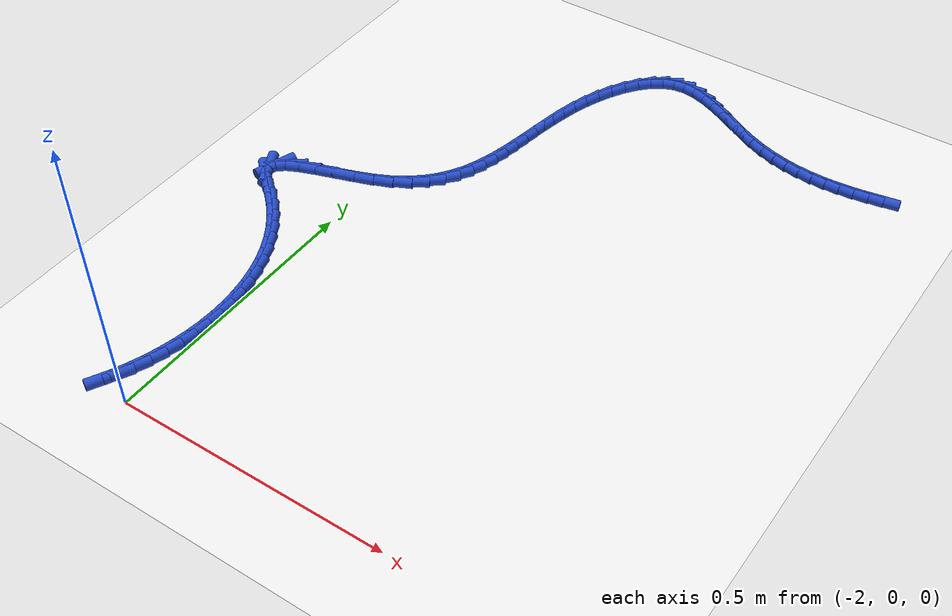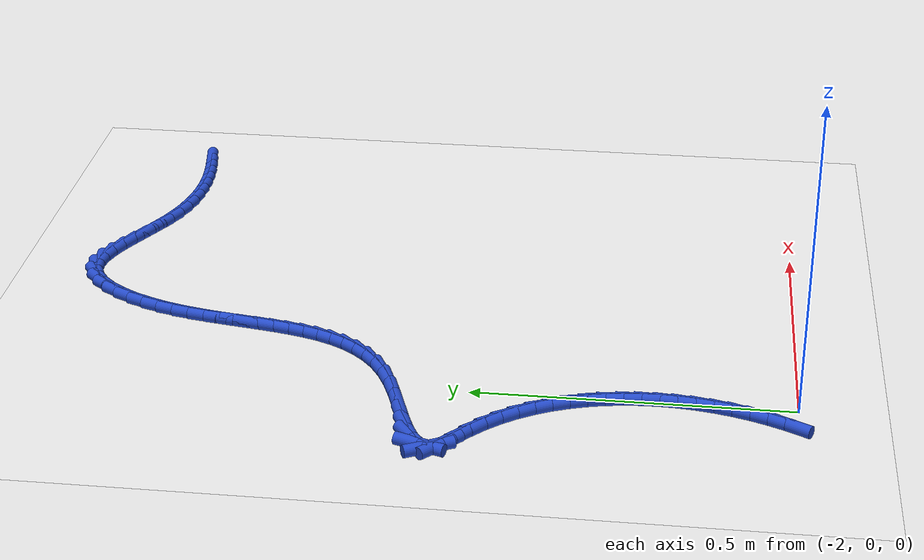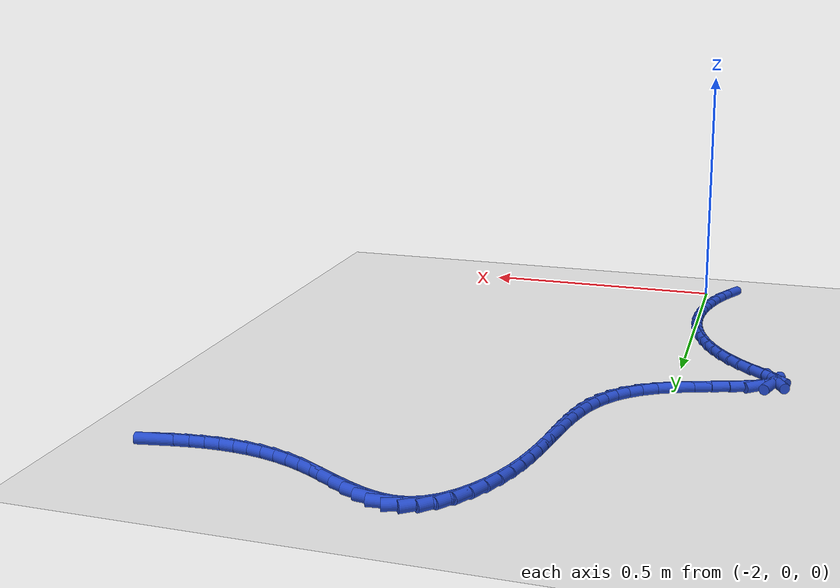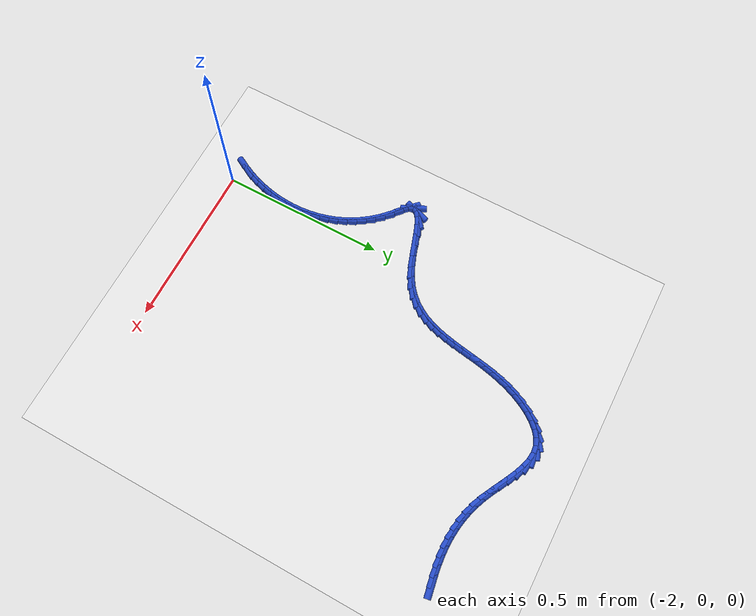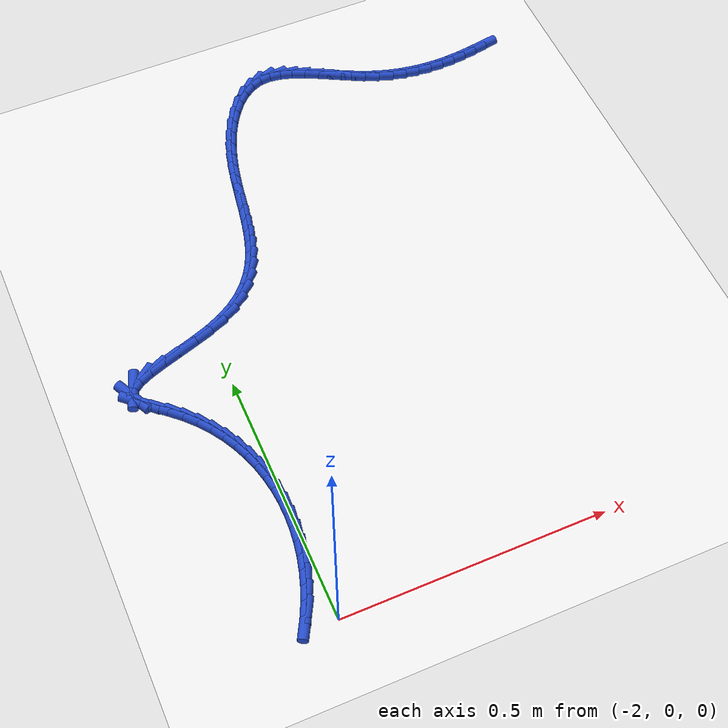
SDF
<sdf version="1.6">
 <world name="default">
  <model name="ground_plane">
   <static>1</static>
   <link name="link">
    <collision name="collision">
     <geometry><plane><normal>0 0 1</normal><size>100 100</size></plane></geometry>
     <surface><friction><ode><mu>100</mu><mu2>50</mu2></ode></friction></surface>
    </collision>
    <visual name="visual">
     <cast_shadows>0</cast_shadows>
     <geometry><plane><normal>0 0 1</normal><size>100 100</size></plane></geometry>
     <material>
      <script><uri>file://media/materials/scripts/gazebo.material</uri><name>Gazebo/WhiteGlow</name></script>
     </material>
    </visual>
   </link>
  </model>
  <model name="line">
   <link name="link_70">
    <pose>-1.2274748744859691 1.073657928588788 0.01 0 1.57 0.16033206831747765</pose>
    <collision name="collision">
     <geometry><cylinder><radius>0.01</radius><length>0.08</length></cylinder></geometry>
    </collision>
    <visual name="visual">
     <material>
      <script><name>Gazebo/Blue</name><uri>file://media/materials/scripts/gazebo.material</uri></script>
     </material>
     <geometry><cylinder><radius>0.01</radius><length>0.08</length></cylinder></geometry>
    </visual>
   </link>
   <link name="link_71">
    <pose>-1.2545601765572443 1.0692776882429227 0.01 0 1.57 0.12227672520900765</pose>
    <collision name="collision">
     <geometry><cylinder><radius>0.01</radius><length>0.08</length></cylinder></geometry>
    </collision>
    <visual name="visual">
     <material>
      <script><name>Gazebo/Blue</name><uri>file://media/materials/scripts/gazebo.material</uri></script>
     </material>
     <geometry><cylinder><radius>0.01</radius><length>0.08</length></cylinder></geometry>
    </visual>
   </link>
   <link name="link_72">
    <pose>-1.2814162379447962 1.0659773521533977 0.01 0 1.57 0.07366379797271562</pose>
    <collision name="collision">
     <geometry><cylinder><radius>0.01</radius><length>0.08</length></cylinder></geometry>
    </collision>
    <visual name="visual">
     <material>
      <script><name>Gazebo/Blue</name><uri>file://media/materials/scripts/gazebo.material</uri></script>
     </material>
     <geometry><cylinder><radius>0.01</radius><length>0.08</length></cylinder></geometry>
    </visual>
   </link>
   <link name="link_73">
    <pose>-1.3079929842341942 1.0640160592426624 0.01 0 1.57 0.01849449668090897</pose>
    <collision name="collision">
     <geometry><cylinder><radius>0.01</radius><length>0.08</length></cylinder></geometry>
    </collision>
    <visual name="visual">
     <material>
      <script><name>Gazebo/Blue</name><uri>file://media/materials/scripts/gazebo.material</uri></script>
     </material>
     <geometry><cylinder><radius>0.01</radius><length>0.08</length></cylinder></geometry>
    </visual>
   </link>
   <link name="link_74">
    <pose>-1.3343293009269745 1.0635289267790975 0.01 0 1.57 -0.04195459647967384</pose>
    <collision name="collision">
     <geometry><cylinder><radius>0.01</radius><length>0.08</length></cylinder></geometry>
    </collision>
    <visual name="visual">
     <material>
      <script><name>Gazebo/Blue</name><uri>file://media/materials/scripts/gazebo.material</uri></script>
     </material>
     <geometry><cylinder><radius>0.01</radius><length>0.08</length></cylinder></geometry>
    </visual>
   </link>
   <link name="link_75">
    <pose>-1.360481500913151 1.064626775992571 0.01 0 1.57 -0.10693792218226808</pose>
    <collision name="collision">
     <geometry><cylinder><radius>0.01</radius><length>0.08</length></cylinder></geometry>
    </collision>
    <visual name="visual">
     <material>
      <script><name>Gazebo/Blue</name><uri>file://media/materials/scripts/gazebo.material</uri></script>
     </material>
     <geometry><cylinder><radius>0.01</radius><length>0.08</length></cylinder></geometry>
    </visual>
   </link>
   <link name="link_76">
    <pose>-1.3865058970827357 1.0674204281129498 0.01 0 1.57 -0.17543259551412074</pose>
    <collision name="collision">
     <geometry><cylinder><radius>0.01</radius><length>0.08</length></cylinder></geometry>
    </collision>
    <visual name="visual">
     <material>
      <script><name>Gazebo/Blue</name><uri>file://media/materials/scripts/gazebo.material</uri></script>
     </material>
     <geometry><cylinder><radius>0.01</radius><length>0.08</length></cylinder></geometry>
    </visual>
   </link>
   <link name="link_77">
    <pose>-1.4124588023257405 1.0720207043701007 0.01 0 1.57 -0.24618625247893214</pose>
    <collision name="collision">
     <geometry><cylinder><radius>0.01</radius><length>0.08</length></cylinder></geometry>
    </collision>
    <visual name="visual">
     <material>
      <script><name>Gazebo/Blue</name><uri>file://media/materials/scripts/gazebo.material</uri></script>
     </material>
     <geometry><cylinder><radius>0.01</radius><length>0.08</length></cylinder></geometry>
    </visual>
   </link>
   <link name="link_78">
    <pose>-1.4383965295321783 1.0785384259938915 0.01 0 1.57 -0.3178087703347083</pose>
    <collision name="collision">
     <geometry><cylinder><radius>0.01</radius><length>0.08</length></cylinder></geometry>
    </collision>
    <visual name="visual">
     <material>
      <script><name>Gazebo/Blue</name><uri>file://media/materials/scripts/gazebo.material</uri></script>
     </material>
     <geometry><cylinder><radius>0.01</radius><length>0.08</length></cylinder></geometry>
    </visual>
   </link>
   <link name="link_79">
    <pose>-1.4643753915920605 1.087084414214189 0.01 0 1.57 -0.38888700737513526</pose>
    <collision name="collision">
     <geometry><cylinder><radius>0.01</radius><length>0.08</length></cylinder></geometry>
    </collision>
    <visual name="visual">
     <material>
      <script><name>Gazebo/Blue</name><uri>file://media/materials/scripts/gazebo.material</uri></script>
     </material>
     <geometry><cylinder><radius>0.01</radius><length>0.08</length></cylinder></geometry>
    </visual>
   </link>
   <link name="link_80">
    <pose>-1.490451662887468 1.0977692826484264 0.01 0 1.57 -0.45076342057396274</pose>
    <collision name="collision">
     <geometry><cylinder><radius>0.01</radius><length>0.08</length></cylinder></geometry>
    </collision>
    <visual name="visual">
     <material>
      <script><name>Gazebo/Blue</name><uri>file://media/materials/scripts/gazebo.material</uri></script>
     </material>
     <geometry><cylinder><radius>0.01</radius><length>0.08</length></cylinder></geometry>
    </visual>
   </link>
   <link name="link_81">
    <pose>-1.5166328868240058 1.1104409157558592 0.01 0 1.57 -0.4834780568722597</pose>
    <collision name="collision">
     <geometry><cylinder><radius>0.01</radius><length>0.08</length></cylinder></geometry>
    </collision>
    <visual name="visual">
     <material>
      <script><name>Gazebo/Blue</name><uri>file://media/materials/scripts/gazebo.material</uri></script>
     </material>
     <geometry><cylinder><radius>0.01</radius><length>0.08</length></cylinder></geometry>
    </visual>
   </link>
   <link name="link_82">
    <pose>-1.5427825495077094 1.1241705245985811 0.01 0 1.57 -0.48614760413924757</pose>
    <collision name="collision">
     <geometry><cylinder><radius>0.01</radius><length>0.08</length></cylinder></geometry>
    </collision>
    <visual name="visual">
     <material>
      <script><name>Gazebo/Blue</name><uri>file://media/materials/scripts/gazebo.material</uri></script>
     </material>
     <geometry><cylinder><radius>0.01</radius><length>0.08</length></cylinder></geometry>
    </visual>
   </link>
   <link name="link_83">
    <pose>-1.5687376451167458 1.137886491130577 0.01 0 1.57 -0.45838159572695697</pose>
    <collision name="collision">
     <geometry><cylinder><radius>0.01</radius><length>0.08</length></cylinder></geometry>
    </collision>
    <visual name="visual">
     <material>
      <script><name>Gazebo/Blue</name><uri>file://media/materials/scripts/gazebo.material</uri></script>
     </material>
     <geometry><cylinder><radius>0.01</radius><length>0.08</length></cylinder></geometry>
    </visual>
   </link>
   <link name="link_84">
    <pose>-1.5943351678292839 1.1505171973058326 0.01 0 1.57 -0.39564370857243153</pose>
    <collision name="collision">
     <geometry><cylinder><radius>0.01</radius><length>0.08</length></cylinder></geometry>
    </collision>
    <visual name="visual">
     <material>
      <script><name>Gazebo/Blue</name><uri>file://media/materials/scripts/gazebo.material</uri></script>
     </material>
     <geometry><cylinder><radius>0.01</radius><length>0.08</length></cylinder></geometry>
    </visual>
   </link>
   <link name="link_85">
    <pose>-1.6194121118234899 1.1609910250783326 0.01 0 1.57 -0.2887212035658918</pose>
    <collision name="collision">
     <geometry><cylinder><radius>0.01</radius><length>0.08</length></cylinder></geometry>
    </collision>
    <visual name="visual">
     <material>
      <script><name>Gazebo/Blue</name><uri>file://media/materials/scripts/gazebo.material</uri></script>
     </material>
     <geometry><cylinder><radius>0.01</radius><length>0.08</length></cylinder></geometry>
    </visual>
   </link>
   <link name="link_86">
    <pose>-1.6438054712775327 1.1682363564020628 0.01 0 1.57 -0.12443321736092114</pose>
    <collision name="collision">
     <geometry><cylinder><radius>0.01</radius><length>0.08</length></cylinder></geometry>
    </collision>
    <visual name="visual">
     <material>
      <script><name>Gazebo/Blue</name><uri>file://media/materials/scripts/gazebo.material</uri></script>
     </material>
     <geometry><cylinder><radius>0.01</radius><length>0.08</length></cylinder></geometry>
    </visual>
   </link>
   <link name="link_87">
    <pose>-1.6673522403695804 1.171181573231009 0.01 0 1.57 0.1072540975397198</pose>
    <collision name="collision">
     <geometry><cylinder><radius>0.01</radius><length>0.08</length></cylinder></geometry>
    </collision>
    <visual name="visual">
     <material>
      <script><name>Gazebo/Blue</name><uri>file://media/materials/scripts/gazebo.material</uri></script>
     </material>
     <geometry><cylinder><radius>0.01</radius><length>0.08</length></cylinder></geometry>
    </visual>
   </link>
   <link name="link_88">
    <pose>-1.6898894132777995 1.1687550575191552 0.01 0 1.57 0.3829025991499241</pose>
    <collision name="collision">
     <geometry><cylinder><radius>0.01</radius><length>0.08</length></cylinder></geometry>
    </collision>
    <visual name="visual">
     <material>
      <script><name>Gazebo/Blue</name><uri>file://media/materials/scripts/gazebo.material</uri></script>
     </material>
     <geometry><cylinder><radius>0.01</radius><length>0.08</length></cylinder></geometry>
    </visual>
   </link>
   <link name="link_89">
    <pose>-1.7112537111671742 1.160149896697818 0.01 0 1.57 0.6180912399512815</pose>
    <collision name="collision">
     <geometry><cylinder><radius>0.01</radius><length>0.08</length></cylinder></geometry>
    </collision>
    <visual name="visual">
     <material>
      <script><name>Gazebo/Blue</name><uri>file://media/materials/scripts/gazebo.material</uri></script>
     </material>
     <geometry><cylinder><radius>0.01</radius><length>0.08</length></cylinder></geometry>
    </visual>
   </link>
   <link name="link_90">
    <pose>-1.731280461728366 1.145910249525942 0.01 0 1.57 0.7954433825808381</pose>
    <collision name="collision">
     <geometry><cylinder><radius>0.01</radius><length>0.08</length></cylinder></geometry>
    </collision>
    <visual name="visual">
     <material>
      <script><name>Gazebo/Blue</name><uri>file://media/materials/scripts/gazebo.material</uri></script>
     </material>
     <geometry><cylinder><radius>0.01</radius><length>0.08</length></cylinder></geometry>
    </visual>
   </link>
   <link name="link_91">
    <pose>-1.7498045492173258 1.1270102158923476 0.01 0 1.57 0.9296596730885333</pose>
    <collision name="collision">
     <geometry><cylinder><radius>0.01</radius><length>0.08</length></cylinder></geometry>
    </collision>
    <visual name="visual">
     <material>
      <script><name>Gazebo/Blue</name><uri>file://media/materials/scripts/gazebo.material</uri></script>
     </material>
     <geometry><cylinder><radius>0.01</radius><length>0.08</length></cylinder></geometry>
    </visual>
   </link>
   <link name="link_92">
    <pose>-1.7666608577035119 1.1044240765032207 0.01 0 1.57 1.0349048048263865</pose>
    <collision name="collision">
     <geometry><cylinder><radius>0.01</radius><length>0.08</length></cylinder></geometry>
    </collision>
    <visual name="visual">
     <material>
      <script><name>Gazebo/Blue</name><uri>file://media/materials/scripts/gazebo.material</uri></script>
     </material>
     <geometry><cylinder><radius>0.01</radius><length>0.08</length></cylinder></geometry>
    </visual>
   </link>
   <link name="link_93">
    <pose>-1.7816842712563823 1.0791261120647444 0.01 0 1.57 1.1218236097301866</pose>
    <collision name="collision">
     <geometry><cylinder><radius>0.01</radius><length>0.08</length></cylinder></geometry>
    </collision>
    <visual name="visual">
     <material>
      <script><name>Gazebo/Blue</name><uri>file://media/materials/scripts/gazebo.material</uri></script>
     </material>
     <geometry><cylinder><radius>0.01</radius><length>0.08</length></cylinder></geometry>
    </visual>
   </link>
   <link name="link_94">
    <pose>-1.794709673945396 1.0520906032831028 0.01 0 1.57 1.198138277703248</pose>
    <collision name="collision">
     <geometry><cylinder><radius>0.01</radius><length>0.08</length></cylinder></geometry>
    </collision>
    <visual name="visual">
     <material>
      <script><name>Gazebo/Blue</name><uri>file://media/materials/scripts/gazebo.material</uri></script>
     </material>
     <geometry><cylinder><radius>0.01</radius><length>0.08</length></cylinder></geometry>
    </visual>
   </link>
   <link name="link_95">
    <pose>-1.805583946855302 1.0242737741907078 0.01 0 1.57 1.2654658841827975</pose>
    <collision name="collision">
     <geometry><cylinder><radius>0.01</radius><length>0.08</length></cylinder></geometry>
    </collision>
    <visual name="visual">
     <material>
      <script><name>Gazebo/Blue</name><uri>file://media/materials/scripts/gazebo.material</uri></script>
     </material>
     <geometry><cylinder><radius>0.01</radius><length>0.08</length></cylinder></geometry>
    </visual>
   </link>
   <link name="link_96">
    <pose>-1.814424771334167 0.9962242681098383 0.01 0 1.57 1.3205122938195741</pose>
    <collision name="collision">
     <geometry><cylinder><radius>0.01</radius><length>0.08</length></cylinder></geometry>
    </collision>
    <visual name="visual">
     <material>
      <script><name>Gazebo/Blue</name><uri>file://media/materials/scripts/gazebo.material</uri></script>
     </material>
     <geometry><cylinder><radius>0.01</radius><length>0.08</length></cylinder></geometry>
    </visual>
   </link>
   <link name="link_97">
    <pose>-1.821617808695458 0.9680873924750515 0.01 0 1.57 1.362367591236169</pose>
    <collision name="collision">
     <geometry><cylinder><radius>0.01</radius><length>0.08</length></cylinder></geometry>
    </collision>
    <visual name="visual">
     <material>
      <script><name>Gazebo/Blue</name><uri>file://media/materials/scripts/gazebo.material</uri></script>
     </material>
     <geometry><cylinder><radius>0.01</radius><length>0.08</length></cylinder></geometry>
    </visual>
   </link>
   <link name="link_98">
    <pose>-1.827560153188969 0.9399912470407871 0.01 0 1.57 1.3905597705814599</pose>
    <collision name="collision">
     <geometry><cylinder><radius>0.01</radius><length>0.08</length></cylinder></geometry>
    </collision>
    <visual name="visual">
     <material>
      <script><name>Gazebo/Blue</name><uri>file://media/materials/scripts/gazebo.material</uri></script>
     </material>
     <geometry><cylinder><radius>0.01</radius><length>0.08</length></cylinder></geometry>
    </visual>
   </link>
   <link name="link_99">
    <pose>-1.8326488990644938 0.9120639315614852 0.01 0 1.57 1.4046907873138161</pose>
    <collision name="collision">
     <geometry><cylinder><radius>0.01</radius><length>0.08</length></cylinder></geometry>
    </collision>
    <visual name="visual">
     <material>
      <script><name>Gazebo/Blue</name><uri>file://media/materials/scripts/gazebo.material</uri></script>
     </material>
     <geometry><cylinder><radius>0.01</radius><length>0.08</length></cylinder></geometry>
    </visual>
   </link>
   <link name="link_100">
    <pose>-1.8372811405718263 0.8844335457915853 0.01 0 1.57 1.4042672857266112</pose>
    <collision name="collision">
     <geometry><cylinder><radius>0.01</radius><length>0.08</length></cylinder></geometry>
    </collision>
    <visual name="visual">
     <material>
      <script><name>Gazebo/Blue</name><uri>file://media/materials/scripts/gazebo.material</uri></script>
     </material>
     <geometry><cylinder><radius>0.01</radius><length>0.08</length></cylinder></geometry>
    </visual>
   </link>
   <link name="link_101">
    <pose>-1.8418539719607592 0.8572281894855277 0.01 0 1.57 1.3885955473438962</pose>
    <collision name="collision">
     <geometry><cylinder><radius>0.01</radius><length>0.08</length></cylinder></geometry>
    </collision>
    <visual name="visual">
     <material>
      <script><name>Gazebo/Blue</name><uri>file://media/materials/scripts/gazebo.material</uri></script>
     </material>
     <geometry><cylinder><radius>0.01</radius><length>0.08</length></cylinder></geometry>
    </visual>
   </link>
   <link name="link_102">
    <pose>-1.8467644874810876 0.8305759623977523 0.01 0 1.57 1.356756793644323</pose>
    <collision name="collision">
     <geometry><cylinder><radius>0.01</radius><length>0.08</length></cylinder></geometry>
    </collision>
    <visual name="visual">
     <material>
      <script><name>Gazebo/Blue</name><uri>file://media/materials/scripts/gazebo.material</uri></script>
     </material>
     <geometry><cylinder><radius>0.01</radius><length>0.08</length></cylinder></geometry>
    </visual>
   </link>
   <link name="link_103">
    <pose>-1.8524097813826046 0.8046049642826988 0.01 0 1.57 1.307695210429977</pose>
    <collision name="collision">
     <geometry><cylinder><radius>0.01</radius><length>0.08</length></cylinder></geometry>
    </collision>
    <visual name="visual">
     <material>
      <script><name>Gazebo/Blue</name><uri>file://media/materials/scripts/gazebo.material</uri></script>
     </material>
     <geometry><cylinder><radius>0.01</radius><length>0.08</length></cylinder></geometry>
    </visual>
   </link>
   <link name="link_104">
    <pose>-1.859186947915104 0.7794432948948063 0.01 0 1.57 1.2404738764128573</pose>
    <collision name="collision">
     <geometry><cylinder><radius>0.01</radius><length>0.08</length></cylinder></geometry>
    </collision>
    <visual name="visual">
     <material>
      <script><name>Gazebo/Blue</name><uri>file://media/materials/scripts/gazebo.material</uri></script>
     </material>
     <geometry><cylinder><radius>0.01</radius><length>0.08</length></cylinder></geometry>
    </visual>
   </link>
   <link name="link_105">
    <pose>-1.8674930813283803 0.7552190539885163 0.01 0 1.57 1.154758013641637</pose>
    <collision name="collision">
     <geometry><cylinder><radius>0.01</radius><length>0.08</length></cylinder></geometry>
    </collision>
    <visual name="visual">
     <material>
      <script><name>Gazebo/Blue</name><uri>file://media/materials/scripts/gazebo.material</uri></script>
     </material>
     <geometry><cylinder><radius>0.01</radius><length>0.08</length></cylinder></geometry>
    </visual>
   </link>
   <link name="link_106">
    <pose>-1.877725275872226 0.7320603413182676 0.01 0 1.57 1.051517301723917</pose>
    <collision name="collision">
     <geometry><cylinder><radius>0.01</radius><length>0.08</length></cylinder></geometry>
    </collision>
    <visual name="visual">
     <material>
      <script><name>Gazebo/Blue</name><uri>file://media/materials/scripts/gazebo.material</uri></script>
     </material>
     <geometry><cylinder><radius>0.01</radius><length>0.08</length></cylinder></geometry>
    </visual>
   </link>
   <link name="link_107">
    <pose>-1.8902806257964355 0.7100952566385003 0.01 0 1.57 0.933741165543122</pose>
    <collision name="collision">
     <geometry><cylinder><radius>0.01</radius><length>0.08</length></cylinder></geometry>
    </collision>
    <visual name="visual">
     <material>
      <script><name>Gazebo/Blue</name><uri>file://media/materials/scripts/gazebo.material</uri></script>
     </material>
     <geometry><cylinder><radius>0.01</radius><length>0.08</length></cylinder></geometry>
    </visual>
   </link>
   <link name="link_108">
    <pose>-1.9055562253508023 0.6894518997036541 0.01 0 1.57 0.8066947869471024</pose>
    <collision name="collision">
     <geometry><cylinder><radius>0.01</radius><length>0.08</length></cylinder></geometry>
    </collision>
    <visual name="visual">
     <material>
      <script><name>Gazebo/Blue</name><uri>file://media/materials/scripts/gazebo.material</uri></script>
     </material>
     <geometry><cylinder><radius>0.01</radius><length>0.08</length></cylinder></geometry>
    </visual>
   </link>
   <link name="link_109">
    <pose>-1.923949168785121 0.6702583702681687 0.01 0 1.57 0.6772325279290158</pose>
    <collision name="collision">
     <geometry><cylinder><radius>0.01</radius><length>0.08</length></cylinder></geometry>
    </collision>
    <visual name="visual">
     <material>
      <script><name>Gazebo/Blue</name><uri>file://media/materials/scripts/gazebo.material</uri></script>
     </material>
     <geometry><cylinder><radius>0.01</radius><length>0.08</length></cylinder></geometry>
    </visual>
   </link>
   <link name="link_110">
    <pose>-1.9458565503491845 0.6526427680864846 0.01 0 1.57 0.5522450719808226</pose>
    <collision name="collision">
     <geometry><cylinder><radius>0.01</radius><length>0.08</length></cylinder></geometry>
    </collision>
    <visual name="visual">
     <material>
      <script><name>Gazebo/Blue</name><uri>file://media/materials/scripts/gazebo.material</uri></script>
     </material>
     <geometry><cylinder><radius>0.01</radius><length>0.08</length></cylinder></geometry>
    </visual>
   </link>
   <link name="link_111">
    <pose>-1.9716754642927867 0.6367331929130415 0.01 0 1.57 0.4380729368176899</pose>
    <collision name="collision">
     <geometry><cylinder><radius>0.01</radius><length>0.08</length></cylinder></geometry>
    </collision>
    <visual name="visual">
     <material>
      <script><name>Gazebo/Blue</name><uri>file://media/materials/scripts/gazebo.material</uri></script>
     </material>
     <geometry><cylinder><radius>0.01</radius><length>0.08</length></cylinder></geometry>
    </visual>
   </link>
   <link name="link_112">
    <pose>-2.001750527602216 0.622645176369293 0.01 0 1.57 0.35708903357712235</pose>
    <collision name="collision">
     <geometry><cylinder><radius>0.01</radius><length>0.08</length></cylinder></geometry>
    </collision>
    <visual name="visual">
     <material>
      <script><name>Gazebo/Blue</name><uri>file://media/materials/scripts/gazebo.material</uri></script>
     </material>
     <geometry><cylinder><radius>0.01</radius><length>0.08</length></cylinder></geometry>
    </visual>
   </link>
   <link name="link_113">
    <pose>-2.0351431948637075 0.6101869368783803 0.01 0 1.57 0.3179954676663819</pose>
    <collision name="collision">
     <geometry><cylinder><radius>0.01</radius><length>0.08</length></cylinder></geometry>
    </collision>
    <visual name="visual">
     <material>
      <script><name>Gazebo/Blue</name><uri>file://media/materials/scripts/gazebo.material</uri></script>
     </material>
     <geometry><cylinder><radius>0.01</radius><length>0.08</length></cylinder></geometry>
    </visual>
   </link>
   <link name="link_114">
    <pose>-2.069587949310113 0.5988488875640862 0.01 0 1.57 0.31319092149880345</pose>
    <collision name="collision">
     <geometry><cylinder><radius>0.01</radius><length>0.08</length></cylinder></geometry>
    </collision>
    <visual name="visual">
     <material>
      <script><name>Gazebo/Blue</name><uri>file://media/materials/scripts/gazebo.material</uri></script>
     </material>
     <geometry><cylinder><radius>0.01</radius><length>0.08</length></cylinder></geometry>
    </visual>
   </link>
   <link name="link_115">
    <pose>-2.102758032024388 0.5881067742555798 0.01 0 1.57 0.34632531178015946</pose>
    <collision name="collision">
     <geometry><cylinder><radius>0.01</radius><length>0.08</length></cylinder></geometry>
    </collision>
    <visual name="visual">
     <material>
      <script><name>Gazebo/Blue</name><uri>file://media/materials/scripts/gazebo.material</uri></script>
     </material>
     <geometry><cylinder><radius>0.01</radius><length>0.08</length></cylinder></geometry>
    </visual>
   </link>
   <link name="link_116">
    <pose>-2.13232668408949 0.5774363427820315 0.01 0 1.57 0.4397760986040028</pose>
    <collision name="collision">
     <geometry><cylinder><radius>0.01</radius><length>0.08</length></cylinder></geometry>
    </collision>
    <visual name="visual">
     <material>
      <script><name>Gazebo/Blue</name><uri>file://media/materials/scripts/gazebo.material</uri></script>
     </material>
     <geometry><cylinder><radius>0.01</radius><length>0.08</length></cylinder></geometry>
    </visual>
   </link>
   <link name="link_117">
    <pose>-2.155967146588373 0.5663133389726108 0.01 0 1.57 0.6664196601822986</pose>
    <collision name="collision">
     <geometry><cylinder><radius>0.01</radius><length>0.08</length></cylinder></geometry>
    </collision>
    <visual name="visual">
     <material>
      <script><name>Gazebo/Blue</name><uri>file://media/materials/scripts/gazebo.material</uri></script>
     </material>
     <geometry><cylinder><radius>0.01</radius><length>0.08</length></cylinder></geometry>
    </visual>
   </link>
   <link name="link_118">
    <pose>-2.1713526606039917 0.5542135086564879 0.01 0 1.57 1.2312758747828436</pose>
    <collision name="collision">
     <geometry><cylinder><radius>0.01</radius><length>0.08</length></cylinder></geometry>
    </collision>
    <visual name="visual">
     <material>
      <script><name>Gazebo/Blue</name><uri>file://media/materials/scripts/gazebo.material</uri></script>
     </material>
     <geometry><cylinder><radius>0.01</radius><length>0.08</length></cylinder></geometry>
    </visual>
   </link>
   <link name="link_119">
    <pose>-2.176156467219302 0.5406125976628321 0.01 0 1.57 -1.1016620722139232</pose>
    <collision name="collision">
     <geometry><cylinder><radius>0.01</radius><length>0.08</length></cylinder></geometry>
    </collision>
    <visual name="visual">
     <material>
      <script><name>Gazebo/Blue</name><uri>file://media/materials/scripts/gazebo.material</uri></script>
     </material>
     <geometry><cylinder><radius>0.01</radius><length>0.08</length></cylinder></geometry>
    </visual>
   </link>
   <link name="link_120">
    <pose>-2.1682459001231122 0.5250061224983977 0.01 0 1.57 -0.7605866039556429</pose>
    <collision name="collision">
     <geometry><cylinder><radius>0.01</radius><length>0.08</length></cylinder></geometry>
    </collision>
    <visual name="visual">
     <material>
      <script><name>Gazebo/Blue</name><uri>file://media/materials/scripts/gazebo.material</uri></script>
     </material>
     <geometry><cylinder><radius>0.01</radius><length>0.08</length></cylinder></geometry>
    </visual>
   </link>
   <link name="link_121">
    <pose>-2.1496531446004505 0.5073138401387255 0.01 0 1.57 -0.696909069863282</pose>
    <collision name="collision">
     <geometry><cylinder><radius>0.01</radius><length>0.08</length></cylinder></geometry>
    </collision>
    <visual name="visual">
     <material>
      <script><name>Gazebo/Blue</name><uri>file://media/materials/scripts/gazebo.material</uri></script>
     </material>
     <geometry><cylinder><radius>0.01</radius><length>0.08</length></cylinder></geometry>
    </visual>
   </link>
   <link name="link_122">
    <pose>-2.1264154596576854 0.48786347272061226 0.01 0 1.57 -0.7516819592958682</pose>
    <collision name="collision">
     <geometry><cylinder><radius>0.01</radius><length>0.08</length></cylinder></geometry>
    </collision>
    <visual name="visual">
     <material>
      <script><name>Gazebo/Blue</name><uri>file://media/materials/scripts/gazebo.material</uri></script>
     </material>
     <geometry><cylinder><radius>0.01</radius><length>0.08</length></cylinder></geometry>
    </visual>
   </link>
   <link name="link_123">
    <pose>-2.104069609490934 0.46697584395557784 0.01 0 1.57 -0.8371136397900096</pose>
    <collision name="collision">
     <geometry><cylinder><radius>0.01</radius><length>0.08</length></cylinder></geometry>
    </collision>
    <visual name="visual">
     <material>
      <script><name>Gazebo/Blue</name><uri>file://media/materials/scripts/gazebo.material</uri></script>
     </material>
     <geometry><cylinder><radius>0.01</radius><length>0.08</length></cylinder></geometry>
    </visual>
   </link>
   <link name="link_124">
    <pose>-2.0841023538976318 0.44482867721796104 0.01 0 1.57 -0.9226563671314962</pose>
    <collision name="collision">
     <geometry><cylinder><radius>0.01</radius><length>0.08</length></cylinder></geometry>
    </collision>
    <visual name="visual">
     <material>
      <script><name>Gazebo/Blue</name><uri>file://media/materials/scripts/gazebo.material</uri></script>
     </material>
     <geometry><cylinder><radius>0.01</radius><length>0.08</length></cylinder></geometry>
    </visual>
   </link>
   <link name="link_125">
    <pose>-2.0664707295997213 0.4215456455981145 0.01 0 1.57 -1.007557089426084</pose>
    <collision name="collision">
     <geometry><cylinder><radius>0.01</radius><length>0.08</length></cylinder></geometry>
    </collision>
    <visual name="visual">
     <material>
      <script><name>Gazebo/Blue</name><uri>file://media/materials/scripts/gazebo.material</uri></script>
     </material>
     <geometry><cylinder><radius>0.01</radius><length>0.08</length></cylinder></geometry>
    </visual>
   </link>
   <link name="link_126">
    <pose>-2.051128932225527 0.39725032180095526 0.01 0 1.57 -1.0912122643896338</pose>
    <collision name="collision">
     <geometry><cylinder><radius>0.01</radius><length>0.08</length></cylinder></geometry>
    </collision>
    <visual name="visual">
     <material>
      <script><name>Gazebo/Blue</name><uri>file://media/materials/scripts/gazebo.material</uri></script>
     </material>
     <geometry><cylinder><radius>0.01</radius><length>0.08</length></cylinder></geometry>
    </visual>
   </link>
   <link name="link_127">
    <pose>-2.038031157403375 0.37206627853140123 0.01 0 1.57 -1.173138957144604</pose>
    <collision name="collision">
     <geometry><cylinder><radius>0.01</radius><length>0.08</length></cylinder></geometry>
    </collision>
    <visual name="visual">
     <material>
      <script><name>Gazebo/Blue</name><uri>file://media/materials/scripts/gazebo.material</uri></script>
     </material>
     <geometry><cylinder><radius>0.01</radius><length>0.08</length></cylinder></geometry>
    </visual>
   </link>
   <link name="link_128">
    <pose>-2.0271316007615905 0.3461170884943695 0.01 0 1.57 -1.2529921801703066</pose>
    <collision name="collision">
     <geometry><cylinder><radius>0.01</radius><length>0.08</length></cylinder></geometry>
    </collision>
    <visual name="visual">
     <material>
      <script><name>Gazebo/Blue</name><uri>file://media/materials/scripts/gazebo.material</uri></script>
     </material>
     <geometry><cylinder><radius>0.01</radius><length>0.08</length></cylinder></geometry>
    </visual>
   </link>
   <link name="link_129">
    <pose>-2.018384457928499 0.31952632439477746 0.01 0 1.57 -1.330567826032644</pose>
    <collision name="collision">
     <geometry><cylinder><radius>0.01</radius><length>0.08</length></cylinder></geometry>
    </collision>
    <visual name="visual">
     <material>
      <script><name>Gazebo/Blue</name><uri>file://media/materials/scripts/gazebo.material</uri></script>
     </material>
     <geometry><cylinder><radius>0.01</radius><length>0.08</length></cylinder></geometry>
    </visual>
   </link>
   <link name="link_130">
    <pose>-2.0117439245324245 0.2924175589375423 0.01 0 1.57 -1.4057940189995712</pose>
    <collision name="collision">
     <geometry><cylinder><radius>0.01</radius><length>0.08</length></cylinder></geometry>
    </collision>
    <visual name="visual">
     <material>
      <script><name>Gazebo/Blue</name><uri>file://media/materials/scripts/gazebo.material</uri></script>
     </material>
     <geometry><cylinder><radius>0.01</radius><length>0.08</length></cylinder></geometry>
    </visual>
   </link>
   <link name="link_131">
    <pose>-2.007164196201694 0.264914364827581 0.01 0 1.57 -1.4787148780488113</pose>
    <collision name="collision">
     <geometry><cylinder><radius>0.01</radius><length>0.08</length></cylinder></geometry>
    </collision>
    <visual name="visual">
     <material>
      <script><name>Gazebo/Blue</name><uri>file://media/materials/scripts/gazebo.material</uri></script>
     </material>
     <geometry><cylinder><radius>0.01</radius><length>0.08</length></cylinder></geometry>
    </visual>
   </link>
   <link name="link_132">
    <pose>-2.0045994685646313 0.2371403147698119 0.01 0 1.57 -1.5494706606262796</pose>
    <collision name="collision">
     <geometry><cylinder><radius>0.01</radius><length>0.08</length></cylinder></geometry>
    </collision>
    <visual name="visual">
     <material>
      <script><name>Gazebo/Blue</name><uri>file://media/materials/scripts/gazebo.material</uri></script>
     </material>
     <geometry><cylinder><radius>0.01</radius><length>0.08</length></cylinder></geometry>
    </visual>
   </link>
   <link name="link_133">
    <pose>-2.004003937249563 0.20921898146915174 0.01 0 1.57 1.5233151840269976</pose>
    <collision name="collision">
     <geometry><cylinder><radius>0.01</radius><length>0.08</length></cylinder></geometry>
    </collision>
    <visual name="visual">
     <material>
      <script><name>Gazebo/Blue</name><uri>file://media/materials/scripts/gazebo.material</uri></script>
     </material>
     <geometry><cylinder><radius>0.01</radius><length>0.08</length></cylinder></geometry>
    </visual>
   </link>
   <link name="link_134">
    <pose>-2.0053317978848133 0.18127393763051786 0.01 0 1.57 1.4561840259172845</pose>
    <collision name="collision">
     <geometry><cylinder><radius>0.01</radius><length>0.08</length></cylinder></geometry>
    </collision>
    <visual name="visual">
     <material>
      <script><name>Gazebo/Blue</name><uri>file://media/materials/scripts/gazebo.material</uri></script>
     </material>
     <geometry><cylinder><radius>0.01</radius><length>0.08</length></cylinder></geometry>
    </visual>
   </link>
   <link name="link_135">
    <pose>-2.0085372460987085 0.15342875595882727 0.01 0 1.57 1.3904138535100525</pose>
    <collision name="collision">
     <geometry><cylinder><radius>0.01</radius><length>0.08</length></cylinder></geometry>
    </collision>
    <visual name="visual">
     <material>
      <script><name>Gazebo/Blue</name><uri>file://media/materials/scripts/gazebo.material</uri></script>
     </material>
     <geometry><cylinder><radius>0.01</radius><length>0.08</length></cylinder></geometry>
    </visual>
   </link>
   <link name="link_136">
    <pose>-2.013574477519573 0.1258070091589981 0.01 0 1.57 1.3256615088799972</pose>
    <collision name="collision">
     <geometry><cylinder><radius>0.01</radius><length>0.08</length></cylinder></geometry>
    </collision>
    <visual name="visual">
     <material>
      <script><name>Gazebo/Blue</name><uri>file://media/materials/scripts/gazebo.material</uri></script>
     </material>
     <geometry><cylinder><radius>0.01</radius><length>0.08</length></cylinder></geometry>
    </visual>
   </link>
   <link name="link_137">
    <pose>-2.0203976877757324 0.09853226993594727 0.01 0 1.57 1.2615654216429195</pose>
    <collision name="collision">
     <geometry><cylinder><radius>0.01</radius><length>0.08</length></cylinder></geometry>
    </collision>
    <visual name="visual">
     <material>
      <script><name>Gazebo/Blue</name><uri>file://media/materials/scripts/gazebo.material</uri></script>
     </material>
     <geometry><cylinder><radius>0.01</radius><length>0.08</length></cylinder></geometry>
    </visual>
   </link>
   <link name="link_138">
    <pose>-2.028961072495512 0.07172811099459214 0.01 0 1.57 1.197753498786396</pose>
    <collision name="collision">
     <geometry><cylinder><radius>0.01</radius><length>0.08</length></cylinder></geometry>
    </collision>
    <visual name="visual">
     <material>
      <script><name>Gazebo/Blue</name><uri>file://media/materials/scripts/gazebo.material</uri></script>
     </material>
     <geometry><cylinder><radius>0.01</radius><length>0.08</length></cylinder></geometry>
    </visual>
   </link>
   <link name="link_139">
    <pose>-2.039218827307237 0.045518105039850015 0.01 0 1.57 1.1339288257949294</pose>
    <collision name="collision">
     <geometry><cylinder><radius>0.01</radius><length>0.08</length></cylinder></geometry>
    </collision>
    <visual name="visual">
     <material>
      <script><name>Gazebo/Blue</name><uri>file://media/materials/scripts/gazebo.material</uri></script>
     </material>
     <geometry><cylinder><radius>0.01</radius><length>0.08</length></cylinder></geometry>
    </visual>
   </link>
   <link name="link_140">
    <pose>-2.051123338736102 0.020024428509412974 0.01 0 1.57 1.0744316281054078</pose>
    <collision name="collision">
     <geometry><cylinder><radius>0.01</radius><length>0.08</length></cylinder></geometry>
    </collision>
    <visual name="visual">
     <material>
      <script><name>Gazebo/Blue</name><uri>file://media/materials/scripts/gazebo.material</uri></script>
     </material>
     <geometry><cylinder><radius>0.01</radius><length>0.08</length></cylinder></geometry>
    </visual>
   </link>
  </model>
 </world>
</sdf>
